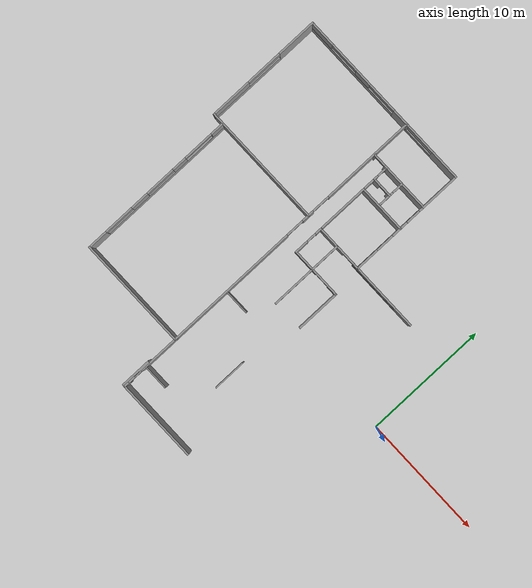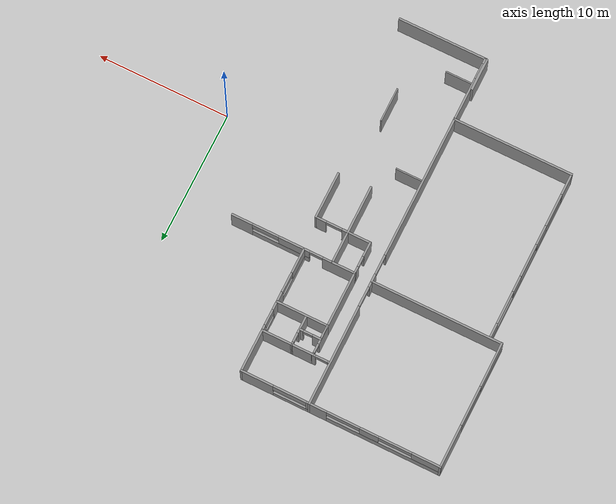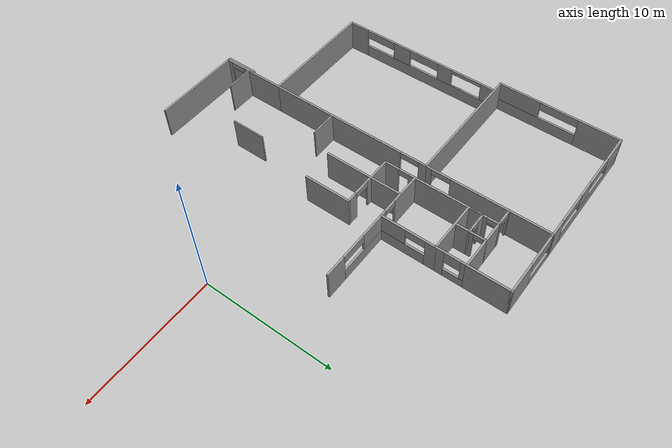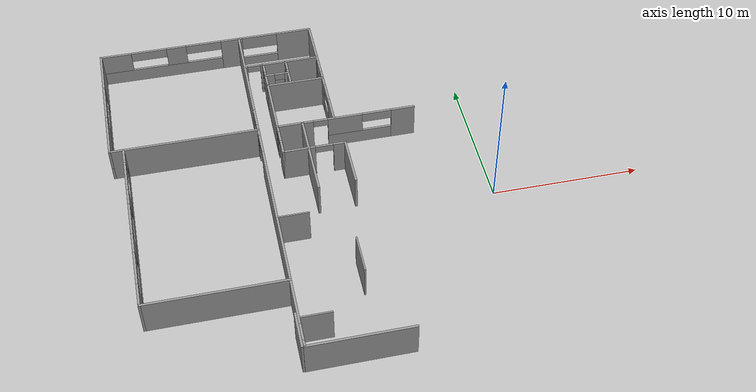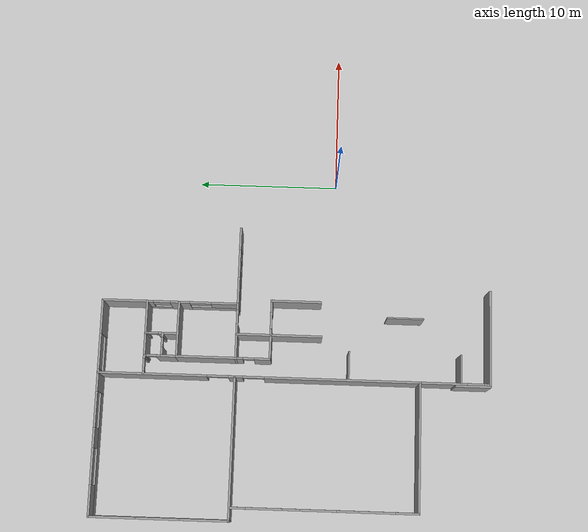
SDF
<sdf version="1.5">
 <model name="Centro_Piaggio">
  <pose>-5.53691 2.63204 0 0 -0 0</pose>
  <link name="Wall_100">
   <collision name="Wall_100_Collision">
    <geometry><box><size>6.763 0.15 2.5</size></box></geometry>
    <pose>0 0 1.25 0 -0 0</pose>
   </collision>
   <visual name="Wall_100_Visual">
    <pose>0 0 1.25 0 -0 0</pose>
    <geometry><box><size>6.763 0.15 2.5</size></box></geometry>
    <material>
     <script><uri>file://media/materials/scripts/gazebo.material</uri><name>Gazebo/Grey</name></script>
    </material>
   </visual>
   <pose>-5.70659 -13.7 0 0 -0 0</pose>
  </link>
  <link name="Wall_174">
   <collision name="Wall_174_Collision">
    <geometry><box><size>3.7 0.15 2.5</size></box></geometry>
    <pose>0 0 1.25 0 -0 0</pose>
   </collision>
   <visual name="Wall_174_Visual">
    <pose>0 0 1.25 0 -0 0</pose>
    <geometry><box><size>3.7 0.15 2.5</size></box></geometry>
    <material>
     <script><uri>file://media/materials/scripts/gazebo.material</uri><name>Gazebo/Grey</name></script>
    </material>
   </visual>
   <pose>-6 -0.024959 0 0 -0 1.5708</pose>
  </link>
  <link name="Wall_176">
   <pose>-4.775 1.75004 0 0 -0 0</pose>
   <visual name="Wall_176_Visual_0">
    <pose>-1.04009 0 1.25 0 -0 0</pose>
    <geometry><box><size>0.519825 0.15 2.5</size></box></geometry>
    <material>
     <script><uri>file://media/materials/scripts/gazebo.material</uri><name>Gazebo/Grey</name></script>
    </material>
   </visual>
   <collision name="Wall_176_Collision_0">
    <geometry><box><size>0.519825 0.15 2.5</size></box></geometry>
    <pose>-1.04009 0 1.25 0 -0 0</pose>
   </collision>
   <visual name="Wall_176_Visual_1">
    <pose>0.859913 0 1.25 0 -0 0</pose>
    <geometry><box><size>0.880175 0.15 2.5</size></box></geometry>
    <material>
     <script><uri>file://media/materials/scripts/gazebo.material</uri><name>Gazebo/Grey</name></script>
    </material>
   </visual>
   <collision name="Wall_176_Collision_1">
    <geometry><box><size>0.880175 0.15 2.5</size></box></geometry>
    <pose>0.859913 0 1.25 0 -0 0</pose>
   </collision>
   <visual name="Wall_176_Visual_2">
    <pose>-0.180175 0 2.25 0 -0 0</pose>
    <geometry><box><size>1.2 0.15 0.5</size></box></geometry>
    <material>
     <script><uri>file://media/materials/scripts/gazebo.material</uri><name>Gazebo/Grey</name></script>
    </material>
   </visual>
   <collision name="Wall_176_Collision_2">
    <geometry><box><size>1.2 0.15 0.5</size></box></geometry>
    <pose>-0.180175 0 2.25 0 -0 0</pose>
   </collision>
  </link>
  <link name="Wall_180">
   <collision name="Wall_180_Collision">
    <geometry><box><size>3.6 0.15 2.5</size></box></geometry>
    <pose>0 0 1.25 0 -0 0</pose>
   </collision>
   <visual name="Wall_180_Visual">
    <pose>0 0 1.25 0 -0 0</pose>
    <geometry><box><size>3.6 0.15 2.5</size></box></geometry>
    <material>
     <script><uri>file://media/materials/scripts/gazebo.material</uri><name>Gazebo/Grey</name></script>
    </material>
   </visual>
   <pose>-3.55 0.025041 0 0 0 -1.5708</pose>
  </link>
  <link name="Wall_182">
   <pose>-3.025 4.15004 0 0 -0 3.14159</pose>
   <visual name="Wall_182_Visual_0">
    <pose>-3.9342 0 1.25 0 -0 0</pose>
    <geometry><box><size>1.6316 0.15 2.5</size></box></geometry>
    <material>
     <script><uri>file://media/materials/scripts/gazebo.material</uri><name>Gazebo/Grey</name></script>
    </material>
   </visual>
   <collision name="Wall_182_Collision_0">
    <geometry><box><size>1.6316 0.15 2.5</size></box></geometry>
    <pose>-3.9342 0 1.25 0 -0 0</pose>
   </collision>
   <visual name="Wall_182_Visual_1">
    <pose>3.49913 0 1.25 0 -0 0</pose>
    <geometry><box><size>2.50174 0.15 2.5</size></box></geometry>
    <material>
     <script><uri>file://media/materials/scripts/gazebo.material</uri><name>Gazebo/Grey</name></script>
    </material>
   </visual>
   <collision name="Wall_182_Collision_1">
    <geometry><box><size>2.50174 0.15 2.5</size></box></geometry>
    <pose>3.49913 0 1.25 0 -0 0</pose>
   </collision>
   <visual name="Wall_182_Visual_2">
    <pose>-0.935069 0 0.5 0 -0 0</pose>
    <geometry><box><size>4.36666 0.15 1</size></box></geometry>
    <material>
     <script><uri>file://media/materials/scripts/gazebo.material</uri><name>Gazebo/Grey</name></script>
    </material>
   </visual>
   <collision name="Wall_182_Collision_2">
    <geometry><box><size>4.36666 0.15 1</size></box></geometry>
    <pose>-0.935069 0 0.5 0 -0 0</pose>
   </collision>
   <visual name="Wall_182_Visual_3">
    <pose>0.064931 0 1.75 0 -0 0</pose>
    <geometry><box><size>2.36666 0.15 1.5</size></box></geometry>
    <material>
     <script><uri>file://media/materials/scripts/gazebo.material</uri><name>Gazebo/Grey</name></script>
    </material>
   </visual>
   <collision name="Wall_182_Collision_3">
    <geometry><box><size>2.36666 0.15 1.5</size></box></geometry>
    <pose>0.064931 0 1.75 0 -0 0</pose>
   </collision>
   <visual name="Wall_182_Visual_4">
    <pose>-2.1184 0 2.15 0 -0 0</pose>
    <geometry><box><size>2 0.15 0.7</size></box></geometry>
    <material>
     <script><uri>file://media/materials/scripts/gazebo.material</uri><name>Gazebo/Grey</name></script>
    </material>
   </visual>
   <collision name="Wall_182_Collision_4">
    <geometry><box><size>2 0.15 0.7</size></box></geometry>
    <pose>-2.1184 0 2.15 0 -0 0</pose>
   </collision>
   <visual name="Wall_182_Visual_5">
    <pose>1.74826 0 2.25 0 -0 0</pose>
    <geometry><box><size>1 0.15 0.5</size></box></geometry>
    <material>
     <script><uri>file://media/materials/scripts/gazebo.material</uri><name>Gazebo/Grey</name></script>
    </material>
   </visual>
   <collision name="Wall_182_Collision_5">
    <geometry><box><size>1 0.15 0.5</size></box></geometry>
    <pose>1.74826 0 2.25 0 -0 0</pose>
   </collision>
  </link>
  <link name="Wall_184">
   <collision name="Wall_184_Collision">
    <geometry><box><size>2.5 0.15 2.5</size></box></geometry>
    <pose>0 0 1.25 0 -0 0</pose>
   </collision>
   <visual name="Wall_184_Visual">
    <pose>0 0 1.25 0 -0 0</pose>
    <geometry><box><size>2.5 0.15 2.5</size></box></geometry>
    <material>
     <script><uri>file://media/materials/scripts/gazebo.material</uri><name>Gazebo/Grey</name></script>
    </material>
   </visual>
   <pose>-6 2.92504 0 0 -0 1.5708</pose>
  </link>
  <link name="Wall_186">
   <collision name="Wall_186_Collision">
    <geometry><box><size>1.8 0.15 2.5</size></box></geometry>
    <pose>0 0 1.25 0 -0 0</pose>
   </collision>
   <visual name="Wall_186_Visual">
    <pose>0 0 1.25 0 -0 0</pose>
    <geometry><box><size>1.8 0.15 2.5</size></box></geometry>
    <material>
     <script><uri>file://media/materials/scripts/gazebo.material</uri><name>Gazebo/Grey</name></script>
    </material>
   </visual>
   <pose>-6.825 1.75004 0 0 -0 3.14159</pose>
  </link>
  <link name="Wall_188">
   <pose>-7.7 2.95004 0 0 0 -1.5708</pose>
   <visual name="Wall_188_Visual_0">
    <pose>-0.982616 0 1.25 0 -0 0</pose>
    <geometry><box><size>0.584768 0.15 2.5</size></box></geometry>
    <material>
     <script><uri>file://media/materials/scripts/gazebo.material</uri><name>Gazebo/Grey</name></script>
    </material>
   </visual>
   <collision name="Wall_188_Collision_0">
    <geometry><box><size>0.584768 0.15 2.5</size></box></geometry>
    <pose>-0.982616 0 1.25 0 -0 0</pose>
   </collision>
   <visual name="Wall_188_Visual_1">
    <pose>0.692384 0 1.25 0 -0 0</pose>
    <geometry><box><size>1.16523 0.15 2.5</size></box></geometry>
    <material>
     <script><uri>file://media/materials/scripts/gazebo.material</uri><name>Gazebo/Grey</name></script>
    </material>
   </visual>
   <collision name="Wall_188_Collision_1">
    <geometry><box><size>1.16523 0.15 2.5</size></box></geometry>
    <pose>0.692384 0 1.25 0 -0 0</pose>
   </collision>
   <visual name="Wall_188_Visual_2">
    <pose>-0.290232 0 2.25 0 -0 0</pose>
    <geometry><box><size>0.8 0.15 0.5</size></box></geometry>
    <material>
     <script><uri>file://media/materials/scripts/gazebo.material</uri><name>Gazebo/Grey</name></script>
    </material>
   </visual>
   <collision name="Wall_188_Collision_2">
    <geometry><box><size>0.8 0.15 0.5</size></box></geometry>
    <pose>-0.290232 0 2.25 0 -0 0</pose>
   </collision>
  </link>
  <link name="Wall_190">
   <collision name="Wall_190_Collision">
    <geometry><box><size>4.3 0.15 2.5</size></box></geometry>
    <pose>0 0 1.25 0 -0 0</pose>
   </collision>
   <visual name="Wall_190_Visual">
    <pose>0 0 1.25 0 -0 0</pose>
    <geometry><box><size>4.3 0.15 2.5</size></box></geometry>
    <material>
     <script><uri>file://media/materials/scripts/gazebo.material</uri><name>Gazebo/Grey</name></script>
    </material>
   </visual>
   <pose>-7.7 6.22504 0 0 -0 1.5708</pose>
  </link>
  <link name="Wall_192">
   <collision name="Wall_192_Collision">
    <geometry><box><size>4 0.15 2.5</size></box></geometry>
    <pose>0 0 1.25 0 -0 0</pose>
   </collision>
   <visual name="Wall_192_Visual">
    <pose>0 0 1.25 0 -0 0</pose>
    <geometry><box><size>4 0.15 2.5</size></box></geometry>
    <material>
     <script><uri>file://media/materials/scripts/gazebo.material</uri><name>Gazebo/Grey</name></script>
    </material>
   </visual>
   <pose>-5.775 8.30004 0 0 -0 0</pose>
  </link>
  <link name="Wall_194">
   <pose>-3.85 6.25004 0 0 0 -1.5708</pose>
   <visual name="Wall_194_Visual_0">
    <pose>-1.7133 0 1.25 0 -0 0</pose>
    <geometry><box><size>0.823403 0.15 2.5</size></box></geometry>
    <material>
     <script><uri>file://media/materials/scripts/gazebo.material</uri><name>Gazebo/Grey</name></script>
    </material>
   </visual>
   <collision name="Wall_194_Collision_0">
    <geometry><box><size>0.823403 0.15 2.5</size></box></geometry>
    <pose>-1.7133 0 1.25 0 -0 0</pose>
   </collision>
   <visual name="Wall_194_Visual_1">
    <pose>0.411702 0 0.5 0 -0 0</pose>
    <geometry><box><size>3.4266 0.15 1</size></box></geometry>
    <material>
     <script><uri>file://media/materials/scripts/gazebo.material</uri><name>Gazebo/Grey</name></script>
    </material>
   </visual>
   <collision name="Wall_194_Collision_1">
    <geometry><box><size>3.4266 0.15 1</size></box></geometry>
    <pose>0.411702 0 0.5 0 -0 0</pose>
   </collision>
   <visual name="Wall_194_Visual_2">
    <pose>1.1617 0 1.75 0 -0 0</pose>
    <geometry><box><size>1.9266 0.15 1.5</size></box></geometry>
    <material>
     <script><uri>file://media/materials/scripts/gazebo.material</uri><name>Gazebo/Grey</name></script>
    </material>
   </visual>
   <collision name="Wall_194_Collision_2">
    <geometry><box><size>1.9266 0.15 1.5</size></box></geometry>
    <pose>1.1617 0 1.75 0 -0 0</pose>
   </collision>
   <visual name="Wall_194_Visual_3">
    <pose>-0.551597 0 2.15 0 -0 0</pose>
    <geometry><box><size>1.5 0.15 0.7</size></box></geometry>
    <material>
     <script><uri>file://media/materials/scripts/gazebo.material</uri><name>Gazebo/Grey</name></script>
    </material>
   </visual>
   <collision name="Wall_194_Collision_3">
    <geometry><box><size>1.5 0.15 0.7</size></box></geometry>
    <pose>-0.551597 0 2.15 0 -0 0</pose>
   </collision>
  </link>
  <link name="Wall_198">
   <collision name="Wall_198_Collision">
    <geometry><box><size>2 0.1 2.5</size></box></geometry>
    <pose>0 0 1.25 0 -0 0</pose>
   </collision>
   <visual name="Wall_198_Visual">
    <pose>0 0 1.25 0 -0 0</pose>
    <geometry><box><size>2 0.1 2.5</size></box></geometry>
    <material>
     <script><uri>file://media/materials/scripts/gazebo.material</uri><name>Gazebo/Grey</name></script>
    </material>
   </visual>
   <pose>-7.95 -11.65 0 0 -0 0</pose>
  </link>
  <link name="Wall_208">
   <pose>-3.85 9.42504 0 0 -0 1.5708</pose>
   <visual name="Wall_208_Visual_0">
    <pose>-0.839247 0 1.25 0 -0 0</pose>
    <geometry><box><size>0.721507 0.15 2.5</size></box></geometry>
    <material>
     <script><uri>file://media/materials/scripts/gazebo.material</uri><name>Gazebo/Grey</name></script>
    </material>
   </visual>
   <collision name="Wall_208_Collision_0">
    <geometry><box><size>0.721507 0.15 2.5</size></box></geometry>
    <pose>-0.839247 0 1.25 0 -0 0</pose>
   </collision>
   <visual name="Wall_208_Visual_1">
    <pose>0.360753 0 0.35 0 -0 0</pose>
    <geometry><box><size>1.67849 0.15 0.7</size></box></geometry>
    <material>
     <script><uri>file://media/materials/scripts/gazebo.material</uri><name>Gazebo/Grey</name></script>
    </material>
   </visual>
   <collision name="Wall_208_Collision_1">
    <geometry><box><size>1.67849 0.15 0.7</size></box></geometry>
    <pose>0.360753 0 0.35 0 -0 0</pose>
   </collision>
   <visual name="Wall_208_Visual_2">
    <pose>0.960753 0 1.6 0 -0 0</pose>
    <geometry><box><size>0.478493 0.15 1.8</size></box></geometry>
    <material>
     <script><uri>file://media/materials/scripts/gazebo.material</uri><name>Gazebo/Grey</name></script>
    </material>
   </visual>
   <collision name="Wall_208_Collision_2">
    <geometry><box><size>0.478493 0.15 1.8</size></box></geometry>
    <pose>0.960753 0 1.6 0 -0 0</pose>
   </collision>
   <visual name="Wall_208_Visual_3">
    <pose>0.121507 0 2 0 -0 0</pose>
    <geometry><box><size>1.2 0.15 1</size></box></geometry>
    <material>
     <script><uri>file://media/materials/scripts/gazebo.material</uri><name>Gazebo/Grey</name></script>
    </material>
   </visual>
   <collision name="Wall_208_Collision_3">
    <geometry><box><size>1.2 0.15 1</size></box></geometry>
    <pose>0.121507 0 2 0 -0 0</pose>
   </collision>
  </link>
  <link name="Wall_210">
   <collision name="Wall_210_Collision">
    <geometry><box><size>2.4 0.15 2.5</size></box></geometry>
    <pose>0 0 1.25 0 -0 0</pose>
   </collision>
   <visual name="Wall_210_Visual">
    <pose>0 0 1.25 0 -0 0</pose>
    <geometry><box><size>2.4 0.15 2.5</size></box></geometry>
    <material>
     <script><uri>file://media/materials/scripts/gazebo.material</uri><name>Gazebo/Grey</name></script>
    </material>
   </visual>
   <pose>-4.975 10.55 0 0 -0 3.14159</pose>
  </link>
  <link name="Wall_212">
   <pose>-6.1 9.50004 0 0 0 -1.5708</pose>
   <visual name="Wall_212_Visual_0">
    <pose>-0.993373 0 1.25 0 -0 0</pose>
    <geometry><box><size>0.263254 0.15 2.5</size></box></geometry>
    <material>
     <script><uri>file://media/materials/scripts/gazebo.material</uri><name>Gazebo/Grey</name></script>
    </material>
   </visual>
   <collision name="Wall_212_Collision_0">
    <geometry><box><size>0.263254 0.15 2.5</size></box></geometry>
    <pose>-0.993373 0 1.25 0 -0 0</pose>
   </collision>
   <visual name="Wall_212_Visual_1">
    <pose>0.481627 0 1.25 0 -0 0</pose>
    <geometry><box><size>1.28675 0.15 2.5</size></box></geometry>
    <material>
     <script><uri>file://media/materials/scripts/gazebo.material</uri><name>Gazebo/Grey</name></script>
    </material>
   </visual>
   <collision name="Wall_212_Collision_1">
    <geometry><box><size>1.28675 0.15 2.5</size></box></geometry>
    <pose>0.481627 0 1.25 0 -0 0</pose>
   </collision>
   <visual name="Wall_212_Visual_2">
    <pose>-0.511746 0 2.25 0 -0 0</pose>
    <geometry><box><size>0.7 0.15 0.5</size></box></geometry>
    <material>
     <script><uri>file://media/materials/scripts/gazebo.material</uri><name>Gazebo/Grey</name></script>
    </material>
   </visual>
   <collision name="Wall_212_Collision_2">
    <geometry><box><size>0.7 0.15 0.5</size></box></geometry>
    <pose>-0.511746 0 2.25 0 -0 0</pose>
   </collision>
  </link>
  <link name="Wall_214">
   <collision name="Wall_214_Collision">
    <geometry><box><size>1.2 0.15 2.5</size></box></geometry>
    <pose>0 0 1.25 0 -0 0</pose>
   </collision>
   <visual name="Wall_214_Visual">
    <pose>0 0 1.25 0 -0 0</pose>
    <geometry><box><size>1.2 0.15 2.5</size></box></geometry>
    <material>
     <script><uri>file://media/materials/scripts/gazebo.material</uri><name>Gazebo/Grey</name></script>
    </material>
   </visual>
   <pose>-7.7 8.82504 0 0 -0 1.5708</pose>
  </link>
  <link name="Wall_216">
   <pose>-6.9 9.35004 0 0 -0 0</pose>
   <visual name="Wall_216_Visual_0">
    <pose>-0.527533 0 1.25 0 -0 0</pose>
    <geometry><box><size>0.694934 0.15 2.5</size></box></geometry>
    <material>
     <script><uri>file://media/materials/scripts/gazebo.material</uri><name>Gazebo/Grey</name></script>
    </material>
   </visual>
   <collision name="Wall_216_Collision_0">
    <geometry><box><size>0.694934 0.15 2.5</size></box></geometry>
    <pose>-0.527533 0 1.25 0 -0 0</pose>
   </collision>
   <visual name="Wall_216_Visual_1">
    <pose>0.697467 0 1.25 0 -0 0</pose>
    <geometry><box><size>0.355066 0.15 2.5</size></box></geometry>
    <material>
     <script><uri>file://media/materials/scripts/gazebo.material</uri><name>Gazebo/Grey</name></script>
    </material>
   </visual>
   <collision name="Wall_216_Collision_1">
    <geometry><box><size>0.355066 0.15 2.5</size></box></geometry>
    <pose>0.697467 0 1.25 0 -0 0</pose>
   </collision>
   <visual name="Wall_216_Visual_2">
    <pose>0.169934 0 2.25 0 -0 0</pose>
    <geometry><box><size>0.7 0.15 0.5</size></box></geometry>
    <material>
     <script><uri>file://media/materials/scripts/gazebo.material</uri><name>Gazebo/Grey</name></script>
    </material>
   </visual>
   <collision name="Wall_216_Collision_2">
    <geometry><box><size>0.7 0.15 0.5</size></box></geometry>
    <pose>0.169934 0 2.25 0 -0 0</pose>
   </collision>
  </link>
  <link name="Wall_218">
   <collision name="Wall_218_Collision">
    <geometry><box><size>1.75 0.15 2.5</size></box></geometry>
    <pose>0 0 1.25 0 -0 0</pose>
   </collision>
   <visual name="Wall_218_Visual">
    <pose>0 0 1.25 0 -0 0</pose>
    <geometry><box><size>1.75 0.15 2.5</size></box></geometry>
    <material>
     <script><uri>file://media/materials/scripts/gazebo.material</uri><name>Gazebo/Grey</name></script>
    </material>
   </visual>
   <pose>-6.90005 10.55 0 0 0 -3.14154</pose>
  </link>
  <link name="Wall_219">
   <pose>-7.70005 9.425 0 0 0 -1.57075</pose>
   <visual name="Wall_219_Visual_0">
    <pose>-1.09165 0 1.25 0 -0 0</pose>
    <geometry><box><size>0.216693 0.15 2.5</size></box></geometry>
    <material>
     <script><uri>file://media/materials/scripts/gazebo.material</uri><name>Gazebo/Grey</name></script>
    </material>
   </visual>
   <collision name="Wall_219_Collision_0">
    <geometry><box><size>0.216693 0.15 2.5</size></box></geometry>
    <pose>-1.09165 0 1.25 0 -0 0</pose>
   </collision>
   <visual name="Wall_219_Visual_1">
    <pose>0.458347 0 1.25 0 -0 0</pose>
    <geometry><box><size>1.48331 0.15 2.5</size></box></geometry>
    <material>
     <script><uri>file://media/materials/scripts/gazebo.material</uri><name>Gazebo/Grey</name></script>
    </material>
   </visual>
   <collision name="Wall_219_Collision_1">
    <geometry><box><size>1.48331 0.15 2.5</size></box></geometry>
    <pose>0.458347 0 1.25 0 -0 0</pose>
   </collision>
   <visual name="Wall_219_Visual_2">
    <pose>-0.633307 0 2.25 0 -0 0</pose>
    <geometry><box><size>0.7 0.15 0.5</size></box></geometry>
    <material>
     <script><uri>file://media/materials/scripts/gazebo.material</uri><name>Gazebo/Grey</name></script>
    </material>
   </visual>
   <collision name="Wall_219_Collision_2">
    <geometry><box><size>0.7 0.15 0.5</size></box></geometry>
    <pose>-0.633307 0 2.25 0 -0 0</pose>
   </collision>
  </link>
  <link name="Wall_221">
   <collision name="Wall_221_Collision">
    <geometry><box><size>3.3 0.15 2.5</size></box></geometry>
    <pose>0 0 1.25 0 -0 0</pose>
   </collision>
   <visual name="Wall_221_Visual">
    <pose>0 0 1.25 0 -0 0</pose>
    <geometry><box><size>3.3 0.15 2.5</size></box></geometry>
    <material>
     <script><uri>file://media/materials/scripts/gazebo.material</uri><name>Gazebo/Grey</name></script>
    </material>
   </visual>
   <pose>-3.85 12.125 0 0 -0 1.5708</pose>
  </link>
  <link name="Wall_223">
   <pose>-6.425 13.7 0 0 -0 3.14159</pose>
   <visual name="Wall_223_Visual_0">
    <pose>-1.40201 0 1.25 0 -0 0</pose>
    <geometry><box><size>2.49597 0.15 2.5</size></box></geometry>
    <material>
     <script><uri>file://media/materials/scripts/gazebo.material</uri><name>Gazebo/Grey</name></script>
    </material>
   </visual>
   <collision name="Wall_223_Collision_0">
    <geometry><box><size>2.49597 0.15 2.5</size></box></geometry>
    <pose>-1.40201 0 1.25 0 -0 0</pose>
   </collision>
   <visual name="Wall_223_Visual_1">
    <pose>1.24799 0 0.35 0 -0 0</pose>
    <geometry><box><size>2.80403 0.15 0.7</size></box></geometry>
    <material>
     <script><uri>file://media/materials/scripts/gazebo.material</uri><name>Gazebo/Grey</name></script>
    </material>
   </visual>
   <collision name="Wall_223_Collision_1">
    <geometry><box><size>2.80403 0.15 0.7</size></box></geometry>
    <pose>1.24799 0 0.35 0 -0 0</pose>
   </collision>
   <visual name="Wall_223_Visual_2">
    <pose>2.49799 0 1.6 0 -0 0</pose>
    <geometry><box><size>0.304029 0.15 1.8</size></box></geometry>
    <material>
     <script><uri>file://media/materials/scripts/gazebo.material</uri><name>Gazebo/Grey</name></script>
    </material>
   </visual>
   <collision name="Wall_223_Collision_2">
    <geometry><box><size>0.304029 0.15 1.8</size></box></geometry>
    <pose>2.49799 0 1.6 0 -0 0</pose>
   </collision>
   <visual name="Wall_223_Visual_3">
    <pose>1.09597 0 2 0 -0 0</pose>
    <geometry><box><size>2.5 0.15 1</size></box></geometry>
    <material>
     <script><uri>file://media/materials/scripts/gazebo.material</uri><name>Gazebo/Grey</name></script>
    </material>
   </visual>
   <collision name="Wall_223_Collision_3">
    <geometry><box><size>2.5 0.15 1</size></box></geometry>
    <pose>1.09597 0 2 0 -0 0</pose>
   </collision>
  </link>
  <link name="Wall_225">
   <pose>-9 8.92504 0 0 0 -1.5708</pose>
   <visual name="Wall_225_Visual_0">
    <pose>-1.01718 0 1.25 0 -0 0</pose>
    <geometry><box><size>7.66564 0.15 2.5</size></box></geometry>
    <material>
     <script><uri>file://media/materials/scripts/gazebo.material</uri><name>Gazebo/Grey</name></script>
    </material>
   </visual>
   <collision name="Wall_225_Collision_0">
    <geometry><box><size>7.66564 0.15 2.5</size></box></geometry>
    <pose>-1.01718 0 1.25 0 -0 0</pose>
   </collision>
   <visual name="Wall_225_Visual_1">
    <pose>4.58282 0 1.25 0 -0 0</pose>
    <geometry><box><size>0.534355 0.15 2.5</size></box></geometry>
    <material>
     <script><uri>file://media/materials/scripts/gazebo.material</uri><name>Gazebo/Grey</name></script>
    </material>
   </visual>
   <collision name="Wall_225_Collision_1">
    <geometry><box><size>0.534355 0.15 2.5</size></box></geometry>
    <pose>4.58282 0 1.25 0 -0 0</pose>
   </collision>
   <visual name="Wall_225_Visual_2">
    <pose>3.56564 0 2.25 0 -0 0</pose>
    <geometry><box><size>1.5 0.15 0.5</size></box></geometry>
    <material>
     <script><uri>file://media/materials/scripts/gazebo.material</uri><name>Gazebo/Grey</name></script>
    </material>
   </visual>
   <collision name="Wall_225_Collision_2">
    <geometry><box><size>1.5 0.15 0.5</size></box></geometry>
    <pose>3.56564 0 2.25 0 -0 0</pose>
   </collision>
  </link>
  <link name="Wall_228">
   <collision name="Wall_228_Collision">
    <geometry><box><size>10 0.15 2.5</size></box></geometry>
    <pose>0 0 1.25 0 -0 0</pose>
   </collision>
   <visual name="Wall_228_Visual">
    <pose>0 0 1.25 0 -0 0</pose>
    <geometry><box><size>10 0.15 2.5</size></box></geometry>
    <material>
     <script><uri>file://media/materials/scripts/gazebo.material</uri><name>Gazebo/Grey</name></script>
    </material>
   </visual>
   <pose>-13.925 4.15004 0 0 -0 3.14159</pose>
  </link>
  <link name="Wall_230">
   <pose>-9 -2.32496 0 0 0 -1.5708</pose>
   <visual name="Wall_230_Visual_0">
    <pose>-6.23371 0 1.25 0 -0 0</pose>
    <geometry><box><size>0.632586 0.15 2.5</size></box></geometry>
    <material>
     <script><uri>file://media/materials/scripts/gazebo.material</uri><name>Gazebo/Grey</name></script>
    </material>
   </visual>
   <collision name="Wall_230_Collision_0">
    <geometry><box><size>0.632586 0.15 2.5</size></box></geometry>
    <pose>-6.23371 0 1.25 0 -0 0</pose>
   </collision>
   <visual name="Wall_230_Visual_1">
    <pose>1.06629 0 1.25 0 -0 0</pose>
    <geometry><box><size>10.9674 0.15 2.5</size></box></geometry>
    <material>
     <script><uri>file://media/materials/scripts/gazebo.material</uri><name>Gazebo/Grey</name></script>
    </material>
   </visual>
   <collision name="Wall_230_Collision_1">
    <geometry><box><size>10.9674 0.15 2.5</size></box></geometry>
    <pose>1.06629 0 1.25 0 -0 0</pose>
   </collision>
   <visual name="Wall_230_Visual_2">
    <pose>-5.16741 0 2.25 0 -0 0</pose>
    <geometry><box><size>1.5 0.15 0.5</size></box></geometry>
    <material>
     <script><uri>file://media/materials/scripts/gazebo.material</uri><name>Gazebo/Grey</name></script>
    </material>
   </visual>
   <collision name="Wall_230_Collision_2">
    <geometry><box><size>1.5 0.15 0.5</size></box></geometry>
    <pose>-5.16741 0 2.25 0 -0 0</pose>
   </collision>
  </link>
  <link name="Wall_232">
   <collision name="Wall_232_Collision">
    <geometry><box><size>9.1 0.15 2.5</size></box></geometry>
    <pose>0 0 1.25 0 -0 0</pose>
   </collision>
   <visual name="Wall_232_Visual">
    <pose>0 0 1.25 0 -0 0</pose>
    <geometry><box><size>9.1 0.15 2.5</size></box></geometry>
    <material>
     <script><uri>file://media/materials/scripts/gazebo.material</uri><name>Gazebo/Grey</name></script>
    </material>
   </visual>
   <pose>-13.475 -8.79996 0 0 -0 3.14159</pose>
  </link>
  <link name="Wall_234">
   <pose>-17.95 -2.37496 0 0 -0 1.5708</pose>
   <visual name="Wall_234_Visual_0">
    <pose>-5.66048 0 1.25 0 -0 0</pose>
    <geometry><box><size>1.67904 0.15 2.5</size></box></geometry>
    <material>
     <script><uri>file://media/materials/scripts/gazebo.material</uri><name>Gazebo/Grey</name></script>
    </material>
   </visual>
   <collision name="Wall_234_Collision_0">
    <geometry><box><size>1.67904 0.15 2.5</size></box></geometry>
    <pose>-5.66048 0 1.25 0 -0 0</pose>
   </collision>
   <visual name="Wall_234_Visual_1">
    <pose>0.839522 0 0.5 0 -0 0</pose>
    <geometry><box><size>11.321 0.15 1</size></box></geometry>
    <material>
     <script><uri>file://media/materials/scripts/gazebo.material</uri><name>Gazebo/Grey</name></script>
    </material>
   </visual>
   <collision name="Wall_234_Collision_1">
    <geometry><box><size>11.321 0.15 1</size></box></geometry>
    <pose>0.839522 0 0.5 0 -0 0</pose>
   </collision>
   <visual name="Wall_234_Visual_2">
    <pose>-1.57043 0 1.75 0 -0 0</pose>
    <geometry><box><size>1.50106 0.15 1.5</size></box></geometry>
    <material>
     <script><uri>file://media/materials/scripts/gazebo.material</uri><name>Gazebo/Grey</name></script>
    </material>
   </visual>
   <collision name="Wall_234_Collision_2">
    <geometry><box><size>1.50106 0.15 1.5</size></box></geometry>
    <pose>-1.57043 0 1.75 0 -0 0</pose>
   </collision>
   <visual name="Wall_234_Visual_3">
    <pose>2.29106 0 1.75 0 -0 0</pose>
    <geometry><box><size>1.22191 0.15 1.5</size></box></geometry>
    <material>
     <script><uri>file://media/materials/scripts/gazebo.material</uri><name>Gazebo/Grey</name></script>
    </material>
   </visual>
   <collision name="Wall_234_Collision_3">
    <geometry><box><size>1.22191 0.15 1.5</size></box></geometry>
    <pose>2.29106 0 1.75 0 -0 0</pose>
   </collision>
   <visual name="Wall_234_Visual_4">
    <pose>5.95101 0 1.75 0 -0 0</pose>
    <geometry><box><size>1.09799 0.15 1.5</size></box></geometry>
    <material>
     <script><uri>file://media/materials/scripts/gazebo.material</uri><name>Gazebo/Grey</name></script>
    </material>
   </visual>
   <collision name="Wall_234_Collision_4">
    <geometry><box><size>1.09799 0.15 1.5</size></box></geometry>
    <pose>5.95101 0 1.75 0 -0 0</pose>
   </collision>
   <visual name="Wall_234_Visual_5">
    <pose>4.15201 0 1 0 -0 0</pose>
    <geometry><box><size>2.5 0.15 0</size></box></geometry>
    <material>
     <script><uri>file://media/materials/scripts/gazebo.material</uri><name>Gazebo/Grey</name></script>
    </material>
   </visual>
   <collision name="Wall_234_Collision_5">
    <geometry><box><size>2.5 0.15 0</size></box></geometry>
    <pose>4.15201 0 1 0 -0 0</pose>
   </collision>
   <visual name="Wall_234_Visual_6">
    <pose>-3.57096 0 2.15 0 -0 0</pose>
    <geometry><box><size>2.5 0.15 0.7</size></box></geometry>
    <material>
     <script><uri>file://media/materials/scripts/gazebo.material</uri><name>Gazebo/Grey</name></script>
    </material>
   </visual>
   <collision name="Wall_234_Collision_6">
    <geometry><box><size>2.5 0.15 0.7</size></box></geometry>
    <pose>-3.57096 0 2.15 0 -0 0</pose>
   </collision>
   <visual name="Wall_234_Visual_7">
    <pose>0.4301 0 2.15 0 -0 0</pose>
    <geometry><box><size>2.5 0.15 0.7</size></box></geometry>
    <material>
     <script><uri>file://media/materials/scripts/gazebo.material</uri><name>Gazebo/Grey</name></script>
    </material>
   </visual>
   <collision name="Wall_234_Collision_7">
    <geometry><box><size>2.5 0.15 0.7</size></box></geometry>
    <pose>0.4301 0 2.15 0 -0 0</pose>
   </collision>
   <visual name="Wall_234_Visual_8">
    <pose>4.15201 0 2.35 0 -0 0</pose>
    <geometry><box><size>2.5 0.15 0.3</size></box></geometry>
    <material>
     <script><uri>file://media/materials/scripts/gazebo.material</uri><name>Gazebo/Grey</name></script>
    </material>
   </visual>
   <collision name="Wall_234_Collision_8">
    <geometry><box><size>2.5 0.15 0.3</size></box></geometry>
    <pose>4.15201 0 2.35 0 -0 0</pose>
   </collision>
  </link>
  <link name="Wall_236">
   <pose>-13.925 13.7 0 0 -0 3.14159</pose>
   <visual name="Wall_236_Visual_0">
    <pose>-4.30322 0 1.25 0 -0 0</pose>
    <geometry><box><size>1.39355 0.15 2.5</size></box></geometry>
    <material>
     <script><uri>file://media/materials/scripts/gazebo.material</uri><name>Gazebo/Grey</name></script>
    </material>
   </visual>
   <collision name="Wall_236_Collision_0">
    <geometry><box><size>1.39355 0.15 2.5</size></box></geometry>
    <pose>-4.30322 0 1.25 0 -0 0</pose>
   </collision>
   <visual name="Wall_236_Visual_1">
    <pose>0.696776 0 0.5 0 -0 0</pose>
    <geometry><box><size>8.60645 0.15 1</size></box></geometry>
    <material>
     <script><uri>file://media/materials/scripts/gazebo.material</uri><name>Gazebo/Grey</name></script>
    </material>
   </visual>
   <collision name="Wall_236_Collision_1">
    <geometry><box><size>8.60645 0.15 1</size></box></geometry>
    <pose>0.696776 0 0.5 0 -0 0</pose>
   </collision>
   <visual name="Wall_236_Visual_2">
    <pose>-0.402443 0 1.75 0 -0 0</pose>
    <geometry><box><size>1.40801 0.15 1.5</size></box></geometry>
    <material>
     <script><uri>file://media/materials/scripts/gazebo.material</uri><name>Gazebo/Grey</name></script>
    </material>
   </visual>
   <collision name="Wall_236_Collision_2">
    <geometry><box><size>1.40801 0.15 1.5</size></box></geometry>
    <pose>-0.402443 0 1.75 0 -0 0</pose>
   </collision>
   <visual name="Wall_236_Visual_3">
    <pose>3.90078 0 1.75 0 -0 0</pose>
    <geometry><box><size>2.19844 0.15 1.5</size></box></geometry>
    <material>
     <script><uri>file://media/materials/scripts/gazebo.material</uri><name>Gazebo/Grey</name></script>
    </material>
   </visual>
   <collision name="Wall_236_Collision_3">
    <geometry><box><size>2.19844 0.15 1.5</size></box></geometry>
    <pose>3.90078 0 1.75 0 -0 0</pose>
   </collision>
   <visual name="Wall_236_Visual_4">
    <pose>-2.35645 0 2.15 0 -0 0</pose>
    <geometry><box><size>2.5 0.15 0.7</size></box></geometry>
    <material>
     <script><uri>file://media/materials/scripts/gazebo.material</uri><name>Gazebo/Grey</name></script>
    </material>
   </visual>
   <collision name="Wall_236_Collision_4">
    <geometry><box><size>2.5 0.15 0.7</size></box></geometry>
    <pose>-2.35645 0 2.15 0 -0 0</pose>
   </collision>
   <visual name="Wall_236_Visual_5">
    <pose>1.55156 0 2.15 0 -0 0</pose>
    <geometry><box><size>2.5 0.15 0.7</size></box></geometry>
    <material>
     <script><uri>file://media/materials/scripts/gazebo.material</uri><name>Gazebo/Grey</name></script>
    </material>
   </visual>
   <collision name="Wall_236_Collision_5">
    <geometry><box><size>2.5 0.15 0.7</size></box></geometry>
    <pose>1.55156 0 2.15 0 -0 0</pose>
   </collision>
  </link>
  <link name="Wall_237">
   <pose>-18.85 8.92504 0 0 0 -1.5708</pose>
   <visual name="Wall_237_Visual_0">
    <pose>-3.20661 0 1.25 0 -0 0</pose>
    <geometry><box><size>3.28678 0.15 2.5</size></box></geometry>
    <material>
     <script><uri>file://media/materials/scripts/gazebo.material</uri><name>Gazebo/Grey</name></script>
    </material>
   </visual>
   <collision name="Wall_237_Collision_0">
    <geometry><box><size>3.28678 0.15 2.5</size></box></geometry>
    <pose>-3.20661 0 1.25 0 -0 0</pose>
   </collision>
   <visual name="Wall_237_Visual_1">
    <pose>1.64339 0 0.5 0 -0 0</pose>
    <geometry><box><size>6.41322 0.15 1</size></box></geometry>
    <material>
     <script><uri>file://media/materials/scripts/gazebo.material</uri><name>Gazebo/Grey</name></script>
    </material>
   </visual>
   <collision name="Wall_237_Collision_1">
    <geometry><box><size>6.41322 0.15 1</size></box></geometry>
    <pose>1.64339 0 0.5 0 -0 0</pose>
   </collision>
   <visual name="Wall_237_Visual_2">
    <pose>3.14339 0 1.75 0 -0 0</pose>
    <geometry><box><size>3.41322 0.15 1.5</size></box></geometry>
    <material>
     <script><uri>file://media/materials/scripts/gazebo.material</uri><name>Gazebo/Grey</name></script>
    </material>
   </visual>
   <collision name="Wall_237_Collision_2">
    <geometry><box><size>3.41322 0.15 1.5</size></box></geometry>
    <pose>3.14339 0 1.75 0 -0 0</pose>
   </collision>
   <visual name="Wall_237_Visual_3">
    <pose>-0.06322 0 2.15 0 -0 0</pose>
    <geometry><box><size>3 0.15 0.7</size></box></geometry>
    <material>
     <script><uri>file://media/materials/scripts/gazebo.material</uri><name>Gazebo/Grey</name></script>
    </material>
   </visual>
   <collision name="Wall_237_Collision_3">
    <geometry><box><size>3 0.15 0.7</size></box></geometry>
    <pose>-0.06322 0 2.15 0 -0 0</pose>
   </collision>
  </link>
  <link name="Wall_243">
   <pose>-9 -11.225 0 0 0 -1.5708</pose>
   <visual name="Wall_243_Visual_0">
    <pose>-0.816236 0 1.25 0 -0 0</pose>
    <geometry><box><size>3.36753 0.15 2.5</size></box></geometry>
    <material>
     <script><uri>file://media/materials/scripts/gazebo.material</uri><name>Gazebo/Grey</name></script>
    </material>
   </visual>
   <collision name="Wall_243_Collision_0">
    <geometry><box><size>3.36753 0.15 2.5</size></box></geometry>
    <pose>-0.816236 0 1.25 0 -0 0</pose>
   </collision>
   <visual name="Wall_243_Visual_1">
    <pose>2.28376 0 1.25 0 -0 0</pose>
    <geometry><box><size>0.432473 0.15 2.5</size></box></geometry>
    <material>
     <script><uri>file://media/materials/scripts/gazebo.material</uri><name>Gazebo/Grey</name></script>
    </material>
   </visual>
   <collision name="Wall_243_Collision_1">
    <geometry><box><size>0.432473 0.15 2.5</size></box></geometry>
    <pose>2.28376 0 1.25 0 -0 0</pose>
   </collision>
   <visual name="Wall_243_Visual_2">
    <pose>1.46753 0 2.25 0 -0 0</pose>
    <geometry><box><size>1.2 0.15 0.5</size></box></geometry>
    <material>
     <script><uri>file://media/materials/scripts/gazebo.material</uri><name>Gazebo/Grey</name></script>
    </material>
   </visual>
   <collision name="Wall_243_Collision_2">
    <geometry><box><size>1.2 0.15 0.5</size></box></geometry>
    <pose>1.46753 0 2.25 0 -0 0</pose>
   </collision>
  </link>
  <link name="Wall_249">
   <collision name="Wall_249_Collision">
    <geometry><box><size>2.62 0.1 2.5</size></box></geometry>
    <pose>0 0 1.25 0 -0 0</pose>
   </collision>
   <visual name="Wall_249_Visual">
    <pose>0 0 1.25 0 -0 0</pose>
    <geometry><box><size>2.62 0.1 2.5</size></box></geometry>
    <material>
     <script><uri>file://media/materials/scripts/gazebo.material</uri><name>Gazebo/Grey</name></script>
    </material>
   </visual>
   <pose>-4.50009 -7.72504 0 0 -0 1.5708</pose>
  </link>
  <link name="Wall_250">
   <collision name="Wall_250_Collision">
    <geometry><box><size>2 0.1 2.5</size></box></geometry>
    <pose>0 0 1.25 0 -0 0</pose>
   </collision>
   <visual name="Wall_250_Visual">
    <pose>0 0 1.25 0 -0 0</pose>
    <geometry><box><size>2 0.1 2.5</size></box></geometry>
    <material>
     <script><uri>file://media/materials/scripts/gazebo.material</uri><name>Gazebo/Grey</name></script>
    </material>
   </visual>
   <pose>-7.95 -3.80004 0 0 -0 3.14159</pose>
  </link>
  <link name="Wall_252">
   <pose>-8.31659 10.55 0 0 -0 3.14159</pose>
   <visual name="Wall_252_Visual_0">
    <pose>-0.549845 0 1.25 0 -0 0</pose>
    <geometry><box><size>0.283309 0.15 2.5</size></box></geometry>
    <material>
     <script><uri>file://media/materials/scripts/gazebo.material</uri><name>Gazebo/Grey</name></script>
    </material>
   </visual>
   <collision name="Wall_252_Collision_0">
    <geometry><box><size>0.283309 0.15 2.5</size></box></geometry>
    <pose>-0.549845 0 1.25 0 -0 0</pose>
   </collision>
   <visual name="Wall_252_Visual_1">
    <pose>0.591655 0 1.25 0 -0 0</pose>
    <geometry><box><size>0.199691 0.15 2.5</size></box></geometry>
    <material>
     <script><uri>file://media/materials/scripts/gazebo.material</uri><name>Gazebo/Grey</name></script>
    </material>
   </visual>
   <collision name="Wall_252_Collision_1">
    <geometry><box><size>0.199691 0.15 2.5</size></box></geometry>
    <pose>0.591655 0 1.25 0 -0 0</pose>
   </collision>
   <visual name="Wall_252_Visual_2">
    <pose>0.041809 0 2.25 0 -0 0</pose>
    <geometry><box><size>0.9 0.15 0.5</size></box></geometry>
    <material>
     <script><uri>file://media/materials/scripts/gazebo.material</uri><name>Gazebo/Grey</name></script>
    </material>
   </visual>
   <collision name="Wall_252_Collision_2">
    <geometry><box><size>0.9 0.15 0.5</size></box></geometry>
    <pose>0.041809 0 2.25 0 -0 0</pose>
   </collision>
  </link>
  <link name="Wall_253">
   <collision name="Wall_253_Collision">
    <geometry><box><size>2.5 0.2 2.5</size></box></geometry>
    <pose>0 0 1.25 0 -0 0</pose>
   </collision>
   <visual name="Wall_253_Visual">
    <pose>0 0 1.25 0 -0 0</pose>
    <geometry><box><size>2.5 0.2 2.5</size></box></geometry>
    <material>
     <script><uri>file://media/materials/scripts/gazebo.material</uri><name>Gazebo/Grey</name></script>
    </material>
   </visual>
   <pose>-9.12 -12.5 0 0 0 -1.57</pose>
  </link>
  <static>1</static>
 </model>
</sdf>
